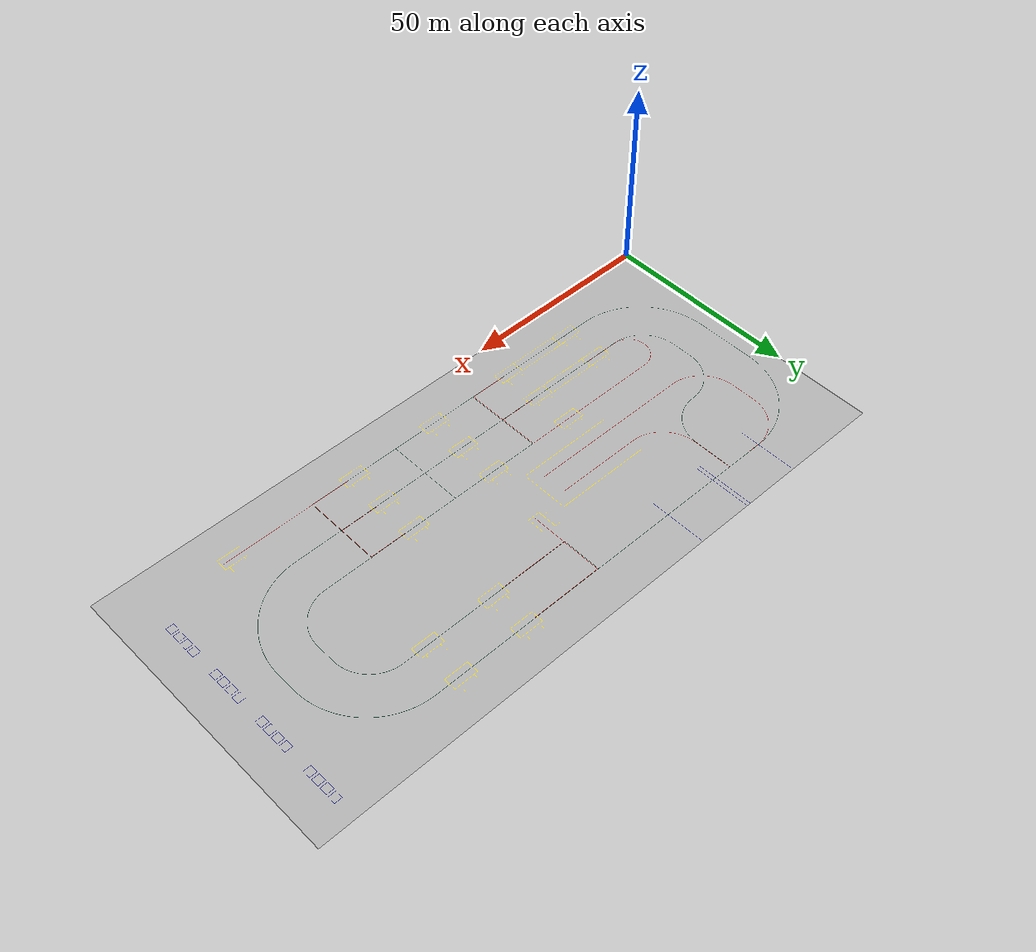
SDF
<sdf version="1.7">
 <world name="factory_ground">
  <gravity>0 0 -9.8</gravity>
  <physics name="default_physics" default="0" type="ode">
   <max_step_size>0.001</max_step_size>
   <real_time_factor>1</real_time_factor>
   <real_time_update_rate>1000</real_time_update_rate>
  </physics>
  <light name="sun" type="directional">
   <pose>0 0 10 0 -0 0</pose>
   <diffuse>0.8 0.8 0.8 1</diffuse>
   <specular>0.2 0.2 0.2 1</specular>
   <attenuation>
    <range>1000</range>
    <constant>0.9</constant>
    <linear>0.01</linear>
    <quadratic>0.001</quadratic>
   </attenuation>
   <direction>-0.5 0.1 -0.9</direction>
   <spot><inner_angle>0</inner_angle><outer_angle>0</outer_angle><falloff>0</falloff></spot>
  </light>
  <magnetic_field>6e-06 2.3e-05 -4.2e-05</magnetic_field>
  <atmosphere type="adiabatic"/>
  <scene><ambient>0.4 0.4 0.4 1</ambient><background>0.7 0.7 0.7 1</background><shadows>1</shadows></scene>
  <spherical_coordinates>
   <surface_model>EARTH_WGS84</surface_model>
   <latitude_deg>0</latitude_deg>
   <longitude_deg>0</longitude_deg>
   <elevation>0</elevation>
   <heading_deg>0</heading_deg>
  </spherical_coordinates>
  <model name="automobile_factory_Ground">
   <static>1</static>
   <pose>0 0 0 0.000523 -8.6e-05 -0</pose>
   <link name="link">
    <inertial>
     <mass>1000</mass>
     <inertia>
      <ixx>1.20008e+06</ixx>
      <ixy>0</ixy>
      <ixz>0</ixz>
      <iyy>8.33342e+06</iyy>
      <iyz>0</iyz>
      <izz>2.03333e+06</izz>
     </inertia>
    </inertial>
    <collision name="collision">
     <pose>80 37.5 0</pose>
     <geometry><plane><normal>0 0 1</normal><size>160 75</size></plane></geometry>
     <surface>
      <friction><ode><mu>100</mu><mu2>50</mu2><fdir1>0 0 0</fdir1><slip1>0</slip1><slip2>0</slip2></ode></friction>
     </surface>
    </collision>
    <visual name="visual">
     <geometry>
      <mesh><uri>model://automobile_factory_Ground/meshes/automobile_factory_Ground.dae</uri></mesh>
     </geometry>
     <meta><layer>1</layer></meta>
    </visual>
   </link>
   <static>1</static>
  </model>
  <model name="marker_1">
   <link name="marker">
    <visual name="visual">
     <geometry><box><size>0.1 0.1 1e-05</size></box></geometry>
     <material>
      <script>
       <uri>model://marker_1/materials/scripts</uri>
       <uri>model://marker_1/materials/textures</uri>
       <name>marker_material1</name>
      </script>
      <ambient>1 1 1 1</ambient>
      <diffuse>1 1 1 1</diffuse>
      <specular>0 0 0 1</specular>
      <emissive>1 1 1 0</emissive>
     </material>
    </visual>
    <collision name="collision"><geometry><box><size>0.1 0.1 1e-05</size></box></geometry></collision>
   </link>
   <link name="marker_pad">
    <pose relative_to="marker">0 0 -1e-05 0 -0 0</pose>
    <visual name="visual">
     <geometry><box><size>0.1 0.1 1e-05</size></box></geometry>
     <material>
      <lighting>1</lighting>
      <script><uri>file://media/materials/scripts/gazebo.material</uri><name>Gazebo/White</name></script>
      <ambient>0.3 0.3 0.3 1</ambient>
      <diffuse>0.7 0.7 0.7 1</diffuse>
      <specular>0.01 0.01 0.01 1</specular>
      <emissive>1 1 1 0</emissive>
     </material>
    </visual>
    <collision name="collision"><geometry><box><size>0.1 0.1 1e-05</size></box></geometry></collision>
   </link>
   <joint name="marker_JOINT_marker_pad" type="revolute">
    <parent>marker</parent>
    <child>marker_pad</child>
    <axis>
     <xyz>0 0 1</xyz>
     <limit><upper>0</upper><lower>0</lower></limit>
     <dynamics><spring_reference>0</spring_reference><spring_stiffness>0</spring_stiffness></dynamics>
    </axis>
   </joint>
   <static>1</static>
   <pose>32 10 0.046333 0 -0 0</pose>
  </model>
  <model name="marker_2">
   <link name="marker">
    <visual name="visual">
     <geometry><box><size>0.1 0.1 1e-05</size></box></geometry>
     <material>
      <script>
       <uri>model://marker_2/materials/scripts</uri>
       <uri>model://marker_2/materials/textures</uri>
       <name>marker_material2</name>
      </script>
      <ambient>1 1 1 1</ambient>
      <diffuse>1 1 1 1</diffuse>
      <specular>0 0 0 1</specular>
      <emissive>1 1 1 0</emissive>
     </material>
    </visual>
    <collision name="collision"><geometry><box><size>0.1 0.1 1e-05</size></box></geometry></collision>
   </link>
   <link name="marker_pad">
    <pose relative_to="marker">0 0 -1e-05 0 -0 0</pose>
    <visual name="visual">
     <geometry><box><size>0.1 0.1 1e-05</size></box></geometry>
     <material>
      <lighting>1</lighting>
      <script><uri>file://media/materials/scripts/gazebo.material</uri><name>Gazebo/White</name></script>
      <ambient>0.3 0.3 0.3 1</ambient>
      <diffuse>0.7 0.7 0.7 1</diffuse>
      <specular>0.01 0.01 0.01 1</specular>
      <emissive>1 1 1 0</emissive>
     </material>
    </visual>
    <collision name="collision"><geometry><box><size>0.1 0.1 1e-05</size></box></geometry></collision>
   </link>
   <joint name="marker_JOINT_marker_pad" type="revolute">
    <parent>marker</parent>
    <child>marker_pad</child>
    <axis>
     <xyz>0 0 1</xyz>
     <limit><upper>0</upper><lower>0</lower></limit>
     <dynamics><spring_reference>0</spring_reference><spring_stiffness>0</spring_stiffness></dynamics>
    </axis>
   </joint>
   <static>1</static>
   <pose>32 20 0.046333 0 -0 0</pose>
  </model>
  <model name="marker_3">
   <link name="marker">
    <visual name="visual">
     <geometry><box><size>0.1 0.1 1e-05</size></box></geometry>
     <material>
      <script>
       <uri>model://marker_3/materials/scripts</uri>
       <uri>model://marker_3/materials/textures</uri>
       <name>marker_material3</name>
      </script>
      <ambient>1 1 1 1</ambient>
      <diffuse>1 1 1 1</diffuse>
      <specular>0 0 0 1</specular>
      <emissive>1 1 1 0</emissive>
     </material>
    </visual>
    <collision name="collision"><geometry><box><size>0.1 0.1 1e-05</size></box></geometry></collision>
   </link>
   <link name="marker_pad">
    <pose relative_to="marker">0 0 -1e-05 0 -0 0</pose>
    <visual name="visual">
     <geometry><box><size>0.1 0.1 1e-05</size></box></geometry>
     <material>
      <lighting>1</lighting>
      <script><uri>file://media/materials/scripts/gazebo.material</uri><name>Gazebo/White</name></script>
      <ambient>0.3 0.3 0.3 1</ambient>
      <diffuse>0.7 0.7 0.7 1</diffuse>
      <specular>0.01 0.01 0.01 1</specular>
      <emissive>1 1 1 0</emissive>
     </material>
    </visual>
    <collision name="collision"><geometry><box><size>0.1 0.1 1e-05</size></box></geometry></collision>
   </link>
   <joint name="marker_JOINT_marker_pad" type="revolute">
    <parent>marker</parent>
    <child>marker_pad</child>
    <axis>
     <xyz>0 0 1</xyz>
     <limit><upper>0</upper><lower>0</lower></limit>
     <dynamics><spring_reference>0</spring_reference><spring_stiffness>0</spring_stiffness></dynamics>
    </axis>
   </joint>
   <static>1</static>
   <pose>50 10 0.046333 0 -0 0</pose>
  </model>
  <model name="marker_4">
   <link name="marker">
    <visual name="visual">
     <geometry><box><size>0.1 0.1 1e-05</size></box></geometry>
     <material>
      <script>
       <uri>model://marker_4/materials/scripts</uri>
       <uri>model://marker_4/materials/textures</uri>
       <name>marker_material4</name>
      </script>
      <ambient>1 1 1 1</ambient>
      <diffuse>1 1 1 1</diffuse>
      <specular>0 0 0 1</specular>
      <emissive>1 1 1 0</emissive>
     </material>
    </visual>
    <collision name="collision"><geometry><box><size>0.1 0.1 1e-05</size></box></geometry></collision>
   </link>
   <link name="marker_pad">
    <pose relative_to="marker">0 0 -1e-05 0 -0 0</pose>
    <visual name="visual">
     <geometry><box><size>0.1 0.1 1e-05</size></box></geometry>
     <material>
      <lighting>1</lighting>
      <script><uri>file://media/materials/scripts/gazebo.material</uri><name>Gazebo/White</name></script>
      <ambient>0.3 0.3 0.3 1</ambient>
      <diffuse>0.7 0.7 0.7 1</diffuse>
      <specular>0.01 0.01 0.01 1</specular>
      <emissive>1 1 1 0</emissive>
     </material>
    </visual>
    <collision name="collision"><geometry><box><size>0.1 0.1 1e-05</size></box></geometry></collision>
   </link>
   <joint name="marker_JOINT_marker_pad" type="revolute">
    <parent>marker</parent>
    <child>marker_pad</child>
    <axis>
     <xyz>0 0 1</xyz>
     <limit><upper>0</upper><lower>0</lower></limit>
     <dynamics><spring_reference>0</spring_reference><spring_stiffness>0</spring_stiffness></dynamics>
    </axis>
   </joint>
   <static>1</static>
   <pose>50 20 0.046333 0 -0 0</pose>
  </model>
  <model name="marker_5">
   <link name="marker">
    <visual name="visual">
     <geometry><box><size>0.1 0.1 1e-05</size></box></geometry>
     <material>
      <script>
       <uri>model://marker_5/materials/scripts</uri>
       <uri>model://marker_5/materials/textures</uri>
       <name>marker_material5</name>
      </script>
      <ambient>1 1 1 1</ambient>
      <diffuse>1 1 1 1</diffuse>
      <specular>0 0 0 1</specular>
      <emissive>1 1 1 0</emissive>
     </material>
    </visual>
    <collision name="collision"><geometry><box><size>0.1 0.1 1e-05</size></box></geometry></collision>
   </link>
   <link name="marker_pad">
    <pose relative_to="marker">0 0 -1e-05 0 -0 0</pose>
    <visual name="visual">
     <geometry><box><size>0.1 0.1 1e-05</size></box></geometry>
     <material>
      <lighting>1</lighting>
      <script><uri>file://media/materials/scripts/gazebo.material</uri><name>Gazebo/White</name></script>
      <ambient>0.3 0.3 0.3 1</ambient>
      <diffuse>0.7 0.7 0.7 1</diffuse>
      <specular>0.01 0.01 0.01 1</specular>
      <emissive>1 1 1 0</emissive>
     </material>
    </visual>
    <collision name="collision"><geometry><box><size>0.1 0.1 1e-05</size></box></geometry></collision>
   </link>
   <joint name="marker_JOINT_marker_pad" type="revolute">
    <parent>marker</parent>
    <child>marker_pad</child>
    <axis>
     <xyz>0 0 1</xyz>
     <limit><upper>0</upper><lower>0</lower></limit>
     <dynamics><spring_reference>0</spring_reference><spring_stiffness>0</spring_stiffness></dynamics>
    </axis>
   </joint>
   <static>1</static>
   <pose>50 30 0.046333 0 -0 0</pose>
  </model>
  <model name="marker_6">
   <link name="marker">
    <visual name="visual">
     <geometry><box><size>0.1 0.1 1e-05</size></box></geometry>
     <material>
      <script>
       <uri>model://marker_6/materials/scripts</uri>
       <uri>model://marker_6/materials/textures</uri>
       <name>marker_material6</name>
      </script>
      <ambient>1 1 1 1</ambient>
      <diffuse>1 1 1 1</diffuse>
      <specular>0 0 0 1</specular>
      <emissive>1 1 1 0</emissive>
     </material>
    </visual>
    <collision name="collision"><geometry><box><size>0.1 0.1 1e-05</size></box></geometry></collision>
   </link>
   <link name="marker_pad">
    <pose relative_to="marker">0 0 -1e-05 0 -0 0</pose>
    <visual name="visual">
     <geometry><box><size>0.1 0.1 1e-05</size></box></geometry>
     <material>
      <lighting>1</lighting>
      <script><uri>file://media/materials/scripts/gazebo.material</uri><name>Gazebo/White</name></script>
      <ambient>0.3 0.3 0.3 1</ambient>
      <diffuse>0.7 0.7 0.7 1</diffuse>
      <specular>0.01 0.01 0.01 1</specular>
      <emissive>1 1 1 0</emissive>
     </material>
    </visual>
    <collision name="collision"><geometry><box><size>0.1 0.1 1e-05</size></box></geometry></collision>
   </link>
   <joint name="marker_JOINT_marker_pad" type="revolute">
    <parent>marker</parent>
    <child>marker_pad</child>
    <axis>
     <xyz>0 0 1</xyz>
     <limit><upper>0</upper><lower>0</lower></limit>
     <dynamics><spring_reference>0</spring_reference><spring_stiffness>0</spring_stiffness></dynamics>
    </axis>
   </joint>
   <static>1</static>
   <pose>62 10 0.046333 0 -0 0</pose>
  </model>
  <model name="marker_7">
   <link name="marker">
    <visual name="visual">
     <geometry><box><size>0.1 0.1 1e-05</size></box></geometry>
     <material>
      <script>
       <uri>model://marker_7/materials/scripts</uri>
       <uri>model://marker_7/materials/textures</uri>
       <name>marker_material7</name>
      </script>
      <ambient>1 1 1 1</ambient>
      <diffuse>1 1 1 1</diffuse>
      <specular>0 0 0 1</specular>
      <emissive>1 1 1 0</emissive>
     </material>
    </visual>
    <collision name="collision"><geometry><box><size>0.1 0.1 1e-05</size></box></geometry></collision>
   </link>
   <link name="marker_pad">
    <pose relative_to="marker">0 0 -1e-05 0 -0 0</pose>
    <visual name="visual">
     <geometry><box><size>0.1 0.1 1e-05</size></box></geometry>
     <material>
      <lighting>1</lighting>
      <script><uri>file://media/materials/scripts/gazebo.material</uri><name>Gazebo/White</name></script>
      <ambient>0.3 0.3 0.3 1</ambient>
      <diffuse>0.7 0.7 0.7 1</diffuse>
      <specular>0.01 0.01 0.01 1</specular>
      <emissive>1 1 1 0</emissive>
     </material>
    </visual>
    <collision name="collision"><geometry><box><size>0.1 0.1 1e-05</size></box></geometry></collision>
   </link>
   <joint name="marker_JOINT_marker_pad" type="revolute">
    <parent>marker</parent>
    <child>marker_pad</child>
    <axis>
     <xyz>0 0 1</xyz>
     <limit><upper>0</upper><lower>0</lower></limit>
     <dynamics><spring_reference>0</spring_reference><spring_stiffness>0</spring_stiffness></dynamics>
    </axis>
   </joint>
   <static>1</static>
   <pose>62 20 0.046333 0 -0 0</pose>
  </model>
  <model name="marker_8">
   <link name="marker">
    <visual name="visual">
     <geometry><box><size>0.1 0.1 1e-05</size></box></geometry>
     <material>
      <script>
       <uri>model://marker_8/materials/scripts</uri>
       <uri>model://marker_8/materials/textures</uri>
       <name>marker_material8</name>
      </script>
      <ambient>1 1 1 1</ambient>
      <diffuse>1 1 1 1</diffuse>
      <specular>0 0 0 1</specular>
      <emissive>1 1 1 0</emissive>
     </material>
    </visual>
    <collision name="collision"><geometry><box><size>0.1 0.1 1e-05</size></box></geometry></collision>
   </link>
   <link name="marker_pad">
    <pose relative_to="marker">0 0 -1e-05 0 -0 0</pose>
    <visual name="visual">
     <geometry><box><size>0.1 0.1 1e-05</size></box></geometry>
     <material>
      <lighting>1</lighting>
      <script><uri>file://media/materials/scripts/gazebo.material</uri><name>Gazebo/White</name></script>
      <ambient>0.3 0.3 0.3 1</ambient>
      <diffuse>0.7 0.7 0.7 1</diffuse>
      <specular>0.01 0.01 0.01 1</specular>
      <emissive>1 1 1 0</emissive>
     </material>
    </visual>
    <collision name="collision"><geometry><box><size>0.1 0.1 1e-05</size></box></geometry></collision>
   </link>
   <joint name="marker_JOINT_marker_pad" type="revolute">
    <parent>marker</parent>
    <child>marker_pad</child>
    <axis>
     <xyz>0 0 1</xyz>
     <limit><upper>0</upper><lower>0</lower></limit>
     <dynamics><spring_reference>0</spring_reference><spring_stiffness>0</spring_stiffness></dynamics>
    </axis>
   </joint>
   <static>1</static>
   <pose>62 30 0.046333 0 -0 0</pose>
  </model>
  <model name="marker_9">
   <link name="marker">
    <visual name="visual">
     <geometry><box><size>0.1 0.1 1e-05</size></box></geometry>
     <material>
      <script>
       <uri>model://marker_9/materials/scripts</uri>
       <uri>model://marker_9/materials/textures</uri>
       <name>marker_material9</name>
      </script>
      <ambient>1 1 1 1</ambient>
      <diffuse>1 1 1 1</diffuse>
      <specular>0 0 0 1</specular>
      <emissive>1 1 1 0</emissive>
     </material>
    </visual>
    <collision name="collision"><geometry><box><size>0.1 0.1 1e-05</size></box></geometry></collision>
   </link>
   <link name="marker_pad">
    <pose relative_to="marker">0 0 -1e-05 0 -0 0</pose>
    <visual name="visual">
     <geometry><box><size>0.1 0.1 1e-05</size></box></geometry>
     <material>
      <lighting>1</lighting>
      <script><uri>file://media/materials/scripts/gazebo.material</uri><name>Gazebo/White</name></script>
      <ambient>0.3 0.3 0.3 1</ambient>
      <diffuse>0.7 0.7 0.7 1</diffuse>
      <specular>0.01 0.01 0.01 1</specular>
      <emissive>1 1 1 0</emissive>
     </material>
    </visual>
    <collision name="collision"><geometry><box><size>0.1 0.1 1e-05</size></box></geometry></collision>
   </link>
   <joint name="marker_JOINT_marker_pad" type="revolute">
    <parent>marker</parent>
    <child>marker_pad</child>
    <axis>
     <xyz>0 0 1</xyz>
     <limit><upper>0</upper><lower>0</lower></limit>
     <dynamics><spring_reference>0</spring_reference><spring_stiffness>0</spring_stiffness></dynamics>
    </axis>
   </joint>
   <static>1</static>
   <pose>74 10 0.046333 0 -0 0</pose>
  </model>
  <model name="marker_10">
   <link name="marker">
    <visual name="visual">
     <geometry><box><size>0.1 0.1 1e-05</size></box></geometry>
     <material>
      <script>
       <uri>model://marker_10/materials/scripts</uri>
       <uri>model://marker_10/materials/textures</uri>
       <name>marker_material10</name>
      </script>
      <ambient>1 1 1 1</ambient>
      <diffuse>1 1 1 1</diffuse>
      <specular>0 0 0 1</specular>
      <emissive>1 1 1 0</emissive>
     </material>
    </visual>
    <collision name="collision"><geometry><box><size>0.1 0.1 1e-05</size></box></geometry></collision>
   </link>
   <link name="marker_pad">
    <pose relative_to="marker">0 0 -1e-05 0 -0 0</pose>
    <visual name="visual">
     <geometry><box><size>0.1 0.1 1e-05</size></box></geometry>
     <material>
      <lighting>1</lighting>
      <script><uri>file://media/materials/scripts/gazebo.material</uri><name>Gazebo/White</name></script>
      <ambient>0.3 0.3 0.3 1</ambient>
      <diffuse>0.7 0.7 0.7 1</diffuse>
      <specular>0.01 0.01 0.01 1</specular>
      <emissive>1 1 1 0</emissive>
     </material>
    </visual>
    <collision name="collision"><geometry><box><size>0.1 0.1 1e-05</size></box></geometry></collision>
   </link>
   <joint name="marker_JOINT_marker_pad" type="revolute">
    <parent>marker</parent>
    <child>marker_pad</child>
    <axis>
     <xyz>0 0 1</xyz>
     <limit><upper>0</upper><lower>0</lower></limit>
     <dynamics><spring_reference>0</spring_reference><spring_stiffness>0</spring_stiffness></dynamics>
    </axis>
   </joint>
   <static>1</static>
   <pose>74 20 0.046333 0 -0 0</pose>
  </model>
  <model name="marker_11">
   <link name="marker">
    <visual name="visual">
     <geometry><box><size>0.1 0.1 1e-05</size></box></geometry>
     <material>
      <script>
       <uri>model://marker_11/materials/scripts</uri>
       <uri>model://marker_11/materials/textures</uri>
       <name>marker_material11</name>
      </script>
      <ambient>1 1 1 1</ambient>
      <diffuse>1 1 1 1</diffuse>
      <specular>0 0 0 1</specular>
      <emissive>1 1 1 0</emissive>
     </material>
    </visual>
    <collision name="collision"><geometry><box><size>0.1 0.1 1e-05</size></box></geometry></collision>
   </link>
   <link name="marker_pad">
    <pose relative_to="marker">0 0 -1e-05 0 -0 0</pose>
    <visual name="visual">
     <geometry><box><size>0.1 0.1 1e-05</size></box></geometry>
     <material>
      <lighting>1</lighting>
      <script><uri>file://media/materials/scripts/gazebo.material</uri><name>Gazebo/White</name></script>
      <ambient>0.3 0.3 0.3 1</ambient>
      <diffuse>0.7 0.7 0.7 1</diffuse>
      <specular>0.01 0.01 0.01 1</specular>
      <emissive>1 1 1 0</emissive>
     </material>
    </visual>
    <collision name="collision"><geometry><box><size>0.1 0.1 1e-05</size></box></geometry></collision>
   </link>
   <joint name="marker_JOINT_marker_pad" type="revolute">
    <parent>marker</parent>
    <child>marker_pad</child>
    <axis>
     <xyz>0 0 1</xyz>
     <limit><upper>0</upper><lower>0</lower></limit>
     <dynamics><spring_reference>0</spring_reference><spring_stiffness>0</spring_stiffness></dynamics>
    </axis>
   </joint>
   <static>1</static>
   <pose>74 30 0.046333 0 -0 0</pose>
  </model>
  <model name="marker_12">
   <link name="marker">
    <visual name="visual">
     <geometry><box><size>0.1 0.1 1e-05</size></box></geometry>
     <material>
      <script>
       <uri>model://marker_12/materials/scripts</uri>
       <uri>model://marker_12/materials/textures</uri>
       <name>marker_material12</name>
      </script>
      <ambient>1 1 1 1</ambient>
      <diffuse>1 1 1 1</diffuse>
      <specular>0 0 0 1</specular>
      <emissive>1 1 1 0</emissive>
     </material>
    </visual>
    <collision name="collision"><geometry><box><size>0.1 0.1 1e-05</size></box></geometry></collision>
   </link>
   <link name="marker_pad">
    <pose relative_to="marker">0 0 -1e-05 0 -0 0</pose>
    <visual name="visual">
     <geometry><box><size>0.1 0.1 1e-05</size></box></geometry>
     <material>
      <lighting>1</lighting>
      <script><uri>file://media/materials/scripts/gazebo.material</uri><name>Gazebo/White</name></script>
      <ambient>0.3 0.3 0.3 1</ambient>
      <diffuse>0.7 0.7 0.7 1</diffuse>
      <specular>0.01 0.01 0.01 1</specular>
      <emissive>1 1 1 0</emissive>
     </material>
    </visual>
    <collision name="collision"><geometry><box><size>0.1 0.1 1e-05</size></box></geometry></collision>
   </link>
   <joint name="marker_JOINT_marker_pad" type="revolute">
    <parent>marker</parent>
    <child>marker_pad</child>
    <axis>
     <xyz>0 0 1</xyz>
     <limit><upper>0</upper><lower>0</lower></limit>
     <dynamics><spring_reference>0</spring_reference><spring_stiffness>0</spring_stiffness></dynamics>
    </axis>
   </joint>
   <static>1</static>
   <pose>85 10 0.046333 0 -0 0</pose>
  </model>
  <model name="marker_13">
   <link name="marker">
    <visual name="visual">
     <geometry><box><size>0.1 0.1 1e-05</size></box></geometry>
     <material>
      <script>
       <uri>model://marker_13/materials/scripts</uri>
       <uri>model://marker_13/materials/textures</uri>
       <name>marker_material13</name>
      </script>
      <ambient>1 1 1 1</ambient>
      <diffuse>1 1 1 1</diffuse>
      <specular>0 0 0 1</specular>
      <emissive>1 1 1 0</emissive>
     </material>
    </visual>
    <collision name="collision"><geometry><box><size>0.1 0.1 1e-05</size></box></geometry></collision>
   </link>
   <link name="marker_pad">
    <pose relative_to="marker">0 0 -1e-05 0 -0 0</pose>
    <visual name="visual">
     <geometry><box><size>0.1 0.1 1e-05</size></box></geometry>
     <material>
      <lighting>1</lighting>
      <script><uri>file://media/materials/scripts/gazebo.material</uri><name>Gazebo/White</name></script>
      <ambient>0.3 0.3 0.3 1</ambient>
      <diffuse>0.7 0.7 0.7 1</diffuse>
      <specular>0.01 0.01 0.01 1</specular>
      <emissive>1 1 1 0</emissive>
     </material>
    </visual>
    <collision name="collision"><geometry><box><size>0.1 0.1 1e-05</size></box></geometry></collision>
   </link>
   <joint name="marker_JOINT_marker_pad" type="revolute">
    <parent>marker</parent>
    <child>marker_pad</child>
    <axis>
     <xyz>0 0 1</xyz>
     <limit><upper>0</upper><lower>0</lower></limit>
     <dynamics><spring_reference>0</spring_reference><spring_stiffness>0</spring_stiffness></dynamics>
    </axis>
   </joint>
   <static>1</static>
   <pose>85 20 0.046333 0 -0 0</pose>
  </model>
  <model name="marker_14">
   <link name="marker">
    <visual name="visual">
     <geometry><box><size>0.1 0.1 1e-05</size></box></geometry>
     <material>
      <script>
       <uri>model://marker_14/materials/scripts</uri>
       <uri>model://marker_14/materials/textures</uri>
       <name>marker_material14</name>
      </script>
      <ambient>1 1 1 1</ambient>
      <diffuse>1 1 1 1</diffuse>
      <specular>0 0 0 1</specular>
      <emissive>1 1 1 0</emissive>
     </material>
    </visual>
    <collision name="collision"><geometry><box><size>0.1 0.1 1e-05</size></box></geometry></collision>
   </link>
   <link name="marker_pad">
    <pose relative_to="marker">0 0 -1e-05 0 -0 0</pose>
    <visual name="visual">
     <geometry><box><size>0.1 0.1 1e-05</size></box></geometry>
     <material>
      <lighting>1</lighting>
      <script><uri>file://media/materials/scripts/gazebo.material</uri><name>Gazebo/White</name></script>
      <ambient>0.3 0.3 0.3 1</ambient>
      <diffuse>0.7 0.7 0.7 1</diffuse>
      <specular>0.01 0.01 0.01 1</specular>
      <emissive>1 1 1 0</emissive>
     </material>
    </visual>
    <collision name="collision"><geometry><box><size>0.1 0.1 1e-05</size></box></geometry></collision>
   </link>
   <joint name="marker_JOINT_marker_pad" type="revolute">
    <parent>marker</parent>
    <child>marker_pad</child>
    <axis>
     <xyz>0 0 1</xyz>
     <limit><upper>0</upper><lower>0</lower></limit>
     <dynamics><spring_reference>0</spring_reference><spring_stiffness>0</spring_stiffness></dynamics>
    </axis>
   </joint>
   <static>1</static>
   <pose>85 30 0.046333 0 -0 0</pose>
  </model>
  <model name="marker_15">
   <link name="marker">
    <visual name="visual">
     <geometry><box><size>0.1 0.1 1e-05</size></box></geometry>
     <material>
      <script>
       <uri>model://marker_15/materials/scripts</uri>
       <uri>model://marker_15/materials/textures</uri>
       <name>marker_material15</name>
      </script>
      <ambient>1 1 1 1</ambient>
      <diffuse>1 1 1 1</diffuse>
      <specular>0 0 0 1</specular>
      <emissive>1 1 1 0</emissive>
     </material>
    </visual>
    <collision name="collision"><geometry><box><size>0.1 0.1 1e-05</size></box></geometry></collision>
   </link>
   <link name="marker_pad">
    <pose relative_to="marker">0 0 -1e-05 0 -0 0</pose>
    <visual name="visual">
     <geometry><box><size>0.1 0.1 1e-05</size></box></geometry>
     <material>
      <lighting>1</lighting>
      <script><uri>file://media/materials/scripts/gazebo.material</uri><name>Gazebo/White</name></script>
      <ambient>0.3 0.3 0.3 1</ambient>
      <diffuse>0.7 0.7 0.7 1</diffuse>
      <specular>0.01 0.01 0.01 1</specular>
      <emissive>1 1 1 0</emissive>
     </material>
    </visual>
    <collision name="collision"><geometry><box><size>0.1 0.1 1e-05</size></box></geometry></collision>
   </link>
   <joint name="marker_JOINT_marker_pad" type="revolute">
    <parent>marker</parent>
    <child>marker_pad</child>
    <axis>
     <xyz>0 0 1</xyz>
     <limit><upper>0</upper><lower>0</lower></limit>
     <dynamics><spring_reference>0</spring_reference><spring_stiffness>0</spring_stiffness></dynamics>
    </axis>
   </joint>
   <static>1</static>
   <pose>97 10 0.046333 0 -0 0</pose>
  </model>
  <model name="marker_16">
   <link name="marker">
    <visual name="visual">
     <geometry><box><size>0.1 0.1 1e-05</size></box></geometry>
     <material>
      <script>
       <uri>model://marker_16/materials/scripts</uri>
       <uri>model://marker_16/materials/textures</uri>
       <name>marker_material16</name>
      </script>
      <ambient>1 1 1 1</ambient>
      <diffuse>1 1 1 1</diffuse>
      <specular>0 0 0 1</specular>
      <emissive>1 1 1 0</emissive>
     </material>
    </visual>
    <collision name="collision"><geometry><box><size>0.1 0.1 1e-05</size></box></geometry></collision>
   </link>
   <link name="marker_pad">
    <pose relative_to="marker">0 0 -1e-05 0 -0 0</pose>
    <visual name="visual">
     <geometry><box><size>0.1 0.1 1e-05</size></box></geometry>
     <material>
      <lighting>1</lighting>
      <script><uri>file://media/materials/scripts/gazebo.material</uri><name>Gazebo/White</name></script>
      <ambient>0.3 0.3 0.3 1</ambient>
      <diffuse>0.7 0.7 0.7 1</diffuse>
      <specular>0.01 0.01 0.01 1</specular>
      <emissive>1 1 1 0</emissive>
     </material>
    </visual>
    <collision name="collision"><geometry><box><size>0.1 0.1 1e-05</size></box></geometry></collision>
   </link>
   <joint name="marker_JOINT_marker_pad" type="revolute">
    <parent>marker</parent>
    <child>marker_pad</child>
    <axis>
     <xyz>0 0 1</xyz>
     <limit><upper>0</upper><lower>0</lower></limit>
     <dynamics><spring_reference>0</spring_reference><spring_stiffness>0</spring_stiffness></dynamics>
    </axis>
   </joint>
   <static>1</static>
   <pose>97 20 0.046333 0 -0 0</pose>
  </model>
  <model name="marker_17">
   <link name="marker">
    <visual name="visual">
     <geometry><box><size>0.1 0.1 1e-05</size></box></geometry>
     <material>
      <script>
       <uri>model://marker_17/materials/scripts</uri>
       <uri>model://marker_17/materials/textures</uri>
       <name>marker_material17</name>
      </script>
      <ambient>1 1 1 1</ambient>
      <diffuse>1 1 1 1</diffuse>
      <specular>0 0 0 1</specular>
      <emissive>1 1 1 0</emissive>
     </material>
    </visual>
    <collision name="collision"><geometry><box><size>0.1 0.1 1e-05</size></box></geometry></collision>
   </link>
   <link name="marker_pad">
    <pose relative_to="marker">0 0 -1e-05 0 -0 0</pose>
    <visual name="visual">
     <geometry><box><size>0.1 0.1 1e-05</size></box></geometry>
     <material>
      <lighting>1</lighting>
      <script><uri>file://media/materials/scripts/gazebo.material</uri><name>Gazebo/White</name></script>
      <ambient>0.3 0.3 0.3 1</ambient>
      <diffuse>0.7 0.7 0.7 1</diffuse>
      <specular>0.01 0.01 0.01 1</specular>
      <emissive>1 1 1 0</emissive>
     </material>
    </visual>
    <collision name="collision"><geometry><box><size>0.1 0.1 1e-05</size></box></geometry></collision>
   </link>
   <joint name="marker_JOINT_marker_pad" type="revolute">
    <parent>marker</parent>
    <child>marker_pad</child>
    <axis>
     <xyz>0 0 1</xyz>
     <limit><upper>0</upper><lower>0</lower></limit>
     <dynamics><spring_reference>0</spring_reference><spring_stiffness>0</spring_stiffness></dynamics>
    </axis>
   </joint>
   <static>1</static>
   <pose>97 30 0.046333 0 -0 0</pose>
  </model>
  <model name="marker_18">
   <link name="marker">
    <visual name="visual">
     <geometry><box><size>0.1 0.1 1e-05</size></box></geometry>
     <material>
      <script>
       <uri>model://marker_18/materials/scripts</uri>
       <uri>model://marker_18/materials/textures</uri>
       <name>marker_material18</name>
      </script>
      <ambient>1 1 1 1</ambient>
      <diffuse>1 1 1 1</diffuse>
      <specular>0 0 0 1</specular>
      <emissive>1 1 1 0</emissive>
     </material>
    </visual>
    <collision name="collision"><geometry><box><size>0.1 0.1 1e-05</size></box></geometry></collision>
   </link>
   <link name="marker_pad">
    <pose relative_to="marker">0 0 -1e-05 0 -0 0</pose>
    <visual name="visual">
     <geometry><box><size>0.1 0.1 1e-05</size></box></geometry>
     <material>
      <lighting>1</lighting>
      <script><uri>file://media/materials/scripts/gazebo.material</uri><name>Gazebo/White</name></script>
      <ambient>0.3 0.3 0.3 1</ambient>
      <diffuse>0.7 0.7 0.7 1</diffuse>
      <specular>0.01 0.01 0.01 1</specular>
      <emissive>1 1 1 0</emissive>
     </material>
    </visual>
    <collision name="collision"><geometry><box><size>0.1 0.1 1e-05</size></box></geometry></collision>
   </link>
   <joint name="marker_JOINT_marker_pad" type="revolute">
    <parent>marker</parent>
    <child>marker_pad</child>
    <axis>
     <xyz>0 0 1</xyz>
     <limit><upper>0</upper><lower>0</lower></limit>
     <dynamics><spring_reference>0</spring_reference><spring_stiffness>0</spring_stiffness></dynamics>
    </axis>
   </joint>
   <static>1</static>
   <pose>109.5 10 0.046333 0 -0 0</pose>
  </model>
  <model name="marker_19">
   <link name="marker">
    <visual name="visual">
     <geometry><box><size>0.1 0.1 1e-05</size></box></geometry>
     <material>
      <script>
       <uri>model://marker_19/materials/scripts</uri>
       <uri>model://marker_19/materials/textures</uri>
       <name>marker_material19</name>
      </script>
      <ambient>1 1 1 1</ambient>
      <diffuse>1 1 1 1</diffuse>
      <specular>0 0 0 1</specular>
      <emissive>1 1 1 0</emissive>
     </material>
    </visual>
    <collision name="collision"><geometry><box><size>0.1 0.1 1e-05</size></box></geometry></collision>
   </link>
   <link name="marker_pad">
    <pose relative_to="marker">0 0 -1e-05 0 -0 0</pose>
    <visual name="visual">
     <geometry><box><size>0.1 0.1 1e-05</size></box></geometry>
     <material>
      <lighting>1</lighting>
      <script><uri>file://media/materials/scripts/gazebo.material</uri><name>Gazebo/White</name></script>
      <ambient>0.3 0.3 0.3 1</ambient>
      <diffuse>0.7 0.7 0.7 1</diffuse>
      <specular>0.01 0.01 0.01 1</specular>
      <emissive>1 1 1 0</emissive>
     </material>
    </visual>
    <collision name="collision"><geometry><box><size>0.1 0.1 1e-05</size></box></geometry></collision>
   </link>
   <joint name="marker_JOINT_marker_pad" type="revolute">
    <parent>marker</parent>
    <child>marker_pad</child>
    <axis>
     <xyz>0 0 1</xyz>
     <limit><upper>0</upper><lower>0</lower></limit>
     <dynamics><spring_reference>0</spring_reference><spring_stiffness>0</spring_stiffness></dynamics>
    </axis>
   </joint>
   <static>1</static>
   <pose>109.5 20 0.046333 0 -0 0</pose>
  </model>
  <model name="marker_20">
   <link name="marker">
    <visual name="visual">
     <geometry><box><size>0.1 0.1 1e-05</size></box></geometry>
     <material>
      <script>
       <uri>model://marker_20/materials/scripts</uri>
       <uri>model://marker_20/materials/textures</uri>
       <name>marker_material20</name>
      </script>
      <ambient>1 1 1 1</ambient>
      <diffuse>1 1 1 1</diffuse>
      <specular>0 0 0 1</specular>
      <emissive>1 1 1 0</emissive>
     </material>
    </visual>
    <collision name="collision"><geometry><box><size>0.1 0.1 1e-05</size></box></geometry></collision>
   </link>
   <link name="marker_pad">
    <pose relative_to="marker">0 0 -1e-05 0 -0 0</pose>
    <visual name="visual">
     <geometry><box><size>0.1 0.1 1e-05</size></box></geometry>
     <material>
      <lighting>1</lighting>
      <script><uri>file://media/materials/scripts/gazebo.material</uri><name>Gazebo/White</name></script>
      <ambient>0.3 0.3 0.3 1</ambient>
      <diffuse>0.7 0.7 0.7 1</diffuse>
      <specular>0.01 0.01 0.01 1</specular>
      <emissive>1 1 1 0</emissive>
     </material>
    </visual>
    <collision name="collision"><geometry><box><size>0.1 0.1 1e-05</size></box></geometry></collision>
   </link>
   <joint name="marker_JOINT_marker_pad" type="revolute">
    <parent>marker</parent>
    <child>marker_pad</child>
    <axis>
     <xyz>0 0 1</xyz>
     <limit><upper>0</upper><lower>0</lower></limit>
     <dynamics><spring_reference>0</spring_reference><spring_stiffness>0</spring_stiffness></dynamics>
    </axis>
   </joint>
   <static>1</static>
   <pose>109.5 30 0.046333 0 -0 0</pose>
  </model>
  <model name="marker_21">
   <link name="marker">
    <visual name="visual">
     <geometry><box><size>0.1 0.1 1e-05</size></box></geometry>
     <material>
      <script>
       <uri>model://marker_21/materials/scripts</uri>
       <uri>model://marker_21/materials/textures</uri>
       <name>marker_material21</name>
      </script>
      <ambient>1 1 1 1</ambient>
      <diffuse>1 1 1 1</diffuse>
      <specular>0 0 0 1</specular>
      <emissive>1 1 1 0</emissive>
     </material>
    </visual>
    <collision name="collision"><geometry><box><size>0.1 0.1 1e-05</size></box></geometry></collision>
   </link>
   <link name="marker_pad">
    <pose relative_to="marker">0 0 -1e-05 0 -0 0</pose>
    <visual name="visual">
     <geometry><box><size>0.1 0.1 1e-05</size></box></geometry>
     <material>
      <lighting>1</lighting>
      <script><uri>file://media/materials/scripts/gazebo.material</uri><name>Gazebo/White</name></script>
      <ambient>0.3 0.3 0.3 1</ambient>
      <diffuse>0.7 0.7 0.7 1</diffuse>
      <specular>0.01 0.01 0.01 1</specular>
      <emissive>1 1 1 0</emissive>
     </material>
    </visual>
    <collision name="collision"><geometry><box><size>0.1 0.1 1e-05</size></box></geometry></collision>
   </link>
   <joint name="marker_JOINT_marker_pad" type="revolute">
    <parent>marker</parent>
    <child>marker_pad</child>
    <axis>
     <xyz>0 0 1</xyz>
     <limit><upper>0</upper><lower>0</lower></limit>
     <dynamics><spring_reference>0</spring_reference><spring_stiffness>0</spring_stiffness></dynamics>
    </axis>
   </joint>
   <static>1</static>
   <pose>131.233 10 0.046333 0 -0 0</pose>
  </model>
  <model name="marker_22">
   <link name="marker">
    <visual name="visual">
     <geometry><box><size>0.1 0.1 1e-05</size></box></geometry>
     <material>
      <script>
       <uri>model://marker_22/materials/scripts</uri>
       <uri>model://marker_22/materials/textures</uri>
       <name>marker_material22</name>
      </script>
      <ambient>1 1 1 1</ambient>
      <diffuse>1 1 1 1</diffuse>
      <specular>0 0 0 1</specular>
      <emissive>1 1 1 0</emissive>
     </material>
    </visual>
    <collision name="collision"><geometry><box><size>0.1 0.1 1e-05</size></box></geometry></collision>
   </link>
   <link name="marker_pad">
    <pose relative_to="marker">0 0 -1e-05 0 -0 0</pose>
    <visual name="visual">
     <geometry><box><size>0.1 0.1 1e-05</size></box></geometry>
     <material>
      <lighting>1</lighting>
      <script><uri>file://media/materials/scripts/gazebo.material</uri><name>Gazebo/White</name></script>
      <ambient>0.3 0.3 0.3 1</ambient>
      <diffuse>0.7 0.7 0.7 1</diffuse>
      <specular>0.01 0.01 0.01 1</specular>
      <emissive>1 1 1 0</emissive>
     </material>
    </visual>
    <collision name="collision"><geometry><box><size>0.1 0.1 1e-05</size></box></geometry></collision>
   </link>
   <joint name="marker_JOINT_marker_pad" type="revolute">
    <parent>marker</parent>
    <child>marker_pad</child>
    <axis>
     <xyz>0 0 1</xyz>
     <limit><upper>0</upper><lower>0</lower></limit>
     <dynamics><spring_reference>0</spring_reference><spring_stiffness>0</spring_stiffness></dynamics>
    </axis>
   </joint>
   <static>1</static>
   <pose>115.5 55 0.046333 0 -0 0</pose>
  </model>
  <model name="marker_23">
   <link name="marker">
    <visual name="visual">
     <geometry><box><size>0.1 0.1 1e-05</size></box></geometry>
     <material>
      <script>
       <uri>model://marker_23/materials/scripts</uri>
       <uri>model://marker_23/materials/textures</uri>
       <name>marker_material23</name>
      </script>
      <ambient>1 1 1 1</ambient>
      <diffuse>1 1 1 1</diffuse>
      <specular>0 0 0 1</specular>
      <emissive>1 1 1 0</emissive>
     </material>
    </visual>
    <collision name="collision"><geometry><box><size>0.1 0.1 1e-05</size></box></geometry></collision>
   </link>
   <link name="marker_pad">
    <pose relative_to="marker">0 0 -1e-05 0 -0 0</pose>
    <visual name="visual">
     <geometry><box><size>0.1 0.1 1e-05</size></box></geometry>
     <material>
      <lighting>1</lighting>
      <script><uri>file://media/materials/scripts/gazebo.material</uri><name>Gazebo/White</name></script>
      <ambient>0.3 0.3 0.3 1</ambient>
      <diffuse>0.7 0.7 0.7 1</diffuse>
      <specular>0.01 0.01 0.01 1</specular>
      <emissive>1 1 1 0</emissive>
     </material>
    </visual>
    <collision name="collision"><geometry><box><size>0.1 0.1 1e-05</size></box></geometry></collision>
   </link>
   <joint name="marker_JOINT_marker_pad" type="revolute">
    <parent>marker</parent>
    <child>marker_pad</child>
    <axis>
     <xyz>0 0 1</xyz>
     <limit><upper>0</upper><lower>0</lower></limit>
     <dynamics><spring_reference>0</spring_reference><spring_stiffness>0</spring_stiffness></dynamics>
    </axis>
   </joint>
   <static>1</static>
   <pose>115.5 65 0.046333 0 -0 0</pose>
  </model>
  <model name="marker_24">
   <link name="marker">
    <visual name="visual">
     <geometry><box><size>0.1 0.1 1e-05</size></box></geometry>
     <material>
      <script>
       <uri>model://marker_24/materials/scripts</uri>
       <uri>model://marker_24/materials/textures</uri>
       <name>marker_material24</name>
      </script>
      <ambient>1 1 1 1</ambient>
      <diffuse>1 1 1 1</diffuse>
      <specular>0 0 0 1</specular>
      <emissive>1 1 1 0</emissive>
     </material>
    </visual>
    <collision name="collision"><geometry><box><size>0.1 0.1 1e-05</size></box></geometry></collision>
   </link>
   <link name="marker_pad">
    <pose relative_to="marker">0 0 -1e-05 0 -0 0</pose>
    <visual name="visual">
     <geometry><box><size>0.1 0.1 1e-05</size></box></geometry>
     <material>
      <lighting>1</lighting>
      <script><uri>file://media/materials/scripts/gazebo.material</uri><name>Gazebo/White</name></script>
      <ambient>0.3 0.3 0.3 1</ambient>
      <diffuse>0.7 0.7 0.7 1</diffuse>
      <specular>0.01 0.01 0.01 1</specular>
      <emissive>1 1 1 0</emissive>
     </material>
    </visual>
    <collision name="collision"><geometry><box><size>0.1 0.1 1e-05</size></box></geometry></collision>
   </link>
   <joint name="marker_JOINT_marker_pad" type="revolute">
    <parent>marker</parent>
    <child>marker_pad</child>
    <axis>
     <xyz>0 0 1</xyz>
     <limit><upper>0</upper><lower>0</lower></limit>
     <dynamics><spring_reference>0</spring_reference><spring_stiffness>0</spring_stiffness></dynamics>
    </axis>
   </joint>
   <static>1</static>
   <pose>97 55 0.046333 0 -0 0</pose>
  </model>
  <model name="marker_25">
   <link name="marker">
    <visual name="visual">
     <geometry><box><size>0.1 0.1 1e-05</size></box></geometry>
     <material>
      <script>
       <uri>model://marker_25/materials/scripts</uri>
       <uri>model://marker_25/materials/textures</uri>
       <name>marker_material25</name>
      </script>
      <ambient>1 1 1 1</ambient>
      <diffuse>1 1 1 1</diffuse>
      <specular>0 0 0 1</specular>
      <emissive>1 1 1 0</emissive>
     </material>
    </visual>
    <collision name="collision"><geometry><box><size>0.1 0.1 1e-05</size></box></geometry></collision>
   </link>
   <link name="marker_pad">
    <pose relative_to="marker">0 0 -1e-05 0 -0 0</pose>
    <visual name="visual">
     <geometry><box><size>0.1 0.1 1e-05</size></box></geometry>
     <material>
      <lighting>1</lighting>
      <script><uri>file://media/materials/scripts/gazebo.material</uri><name>Gazebo/White</name></script>
      <ambient>0.3 0.3 0.3 1</ambient>
      <diffuse>0.7 0.7 0.7 1</diffuse>
      <specular>0.01 0.01 0.01 1</specular>
      <emissive>1 1 1 0</emissive>
     </material>
    </visual>
    <collision name="collision"><geometry><box><size>0.1 0.1 1e-05</size></box></geometry></collision>
   </link>
   <joint name="marker_JOINT_marker_pad" type="revolute">
    <parent>marker</parent>
    <child>marker_pad</child>
    <axis>
     <xyz>0 0 1</xyz>
     <limit><upper>0</upper><lower>0</lower></limit>
     <dynamics><spring_reference>0</spring_reference><spring_stiffness>0</spring_stiffness></dynamics>
    </axis>
   </joint>
   <static>1</static>
   <pose>97 65 0.046333 0 -0 0</pose>
  </model>
  <model name="marker_26">
   <link name="marker">
    <visual name="visual">
     <geometry><box><size>0.1 0.1 1e-05</size></box></geometry>
     <material>
      <script>
       <uri>model://marker_26/materials/scripts</uri>
       <uri>model://marker_26/materials/textures</uri>
       <name>marker_material26</name>
      </script>
      <ambient>1 1 1 1</ambient>
      <diffuse>1 1 1 1</diffuse>
      <specular>0 0 0 1</specular>
      <emissive>1 1 1 0</emissive>
     </material>
    </visual>
    <collision name="collision"><geometry><box><size>0.1 0.1 1e-05</size></box></geometry></collision>
   </link>
   <link name="marker_pad">
    <pose relative_to="marker">0 0 -1e-05 0 -0 0</pose>
    <visual name="visual">
     <geometry><box><size>0.1 0.1 1e-05</size></box></geometry>
     <material>
      <lighting>1</lighting>
      <script><uri>file://media/materials/scripts/gazebo.material</uri><name>Gazebo/White</name></script>
      <ambient>0.3 0.3 0.3 1</ambient>
      <diffuse>0.7 0.7 0.7 1</diffuse>
      <specular>0.01 0.01 0.01 1</specular>
      <emissive>1 1 1 0</emissive>
     </material>
    </visual>
    <collision name="collision"><geometry><box><size>0.1 0.1 1e-05</size></box></geometry></collision>
   </link>
   <joint name="marker_JOINT_marker_pad" type="revolute">
    <parent>marker</parent>
    <child>marker_pad</child>
    <axis>
     <xyz>0 0 1</xyz>
     <limit><upper>0</upper><lower>0</lower></limit>
     <dynamics><spring_reference>0</spring_reference><spring_stiffness>0</spring_stiffness></dynamics>
    </axis>
   </joint>
   <static>1</static>
   <pose>76.5 55 0.046333 0 -0 0</pose>
  </model>
  <model name="marker_27">
   <link name="marker">
    <visual name="visual">
     <geometry><box><size>0.1 0.1 1e-05</size></box></geometry>
     <material>
      <script>
       <uri>model://marker_27/materials/scripts</uri>
       <uri>model://marker_27/materials/textures</uri>
       <name>marker_material27</name>
      </script>
      <ambient>1 1 1 1</ambient>
      <diffuse>1 1 1 1</diffuse>
      <specular>0 0 0 1</specular>
      <emissive>1 1 1 0</emissive>
     </material>
    </visual>
    <collision name="collision"><geometry><box><size>0.1 0.1 1e-05</size></box></geometry></collision>
   </link>
   <link name="marker_pad">
    <pose relative_to="marker">0 0 -1e-05 0 -0 0</pose>
    <visual name="visual">
     <geometry><box><size>0.1 0.1 1e-05</size></box></geometry>
     <material>
      <lighting>1</lighting>
      <script><uri>file://media/materials/scripts/gazebo.material</uri><name>Gazebo/White</name></script>
      <ambient>0.3 0.3 0.3 1</ambient>
      <diffuse>0.7 0.7 0.7 1</diffuse>
      <specular>0.01 0.01 0.01 1</specular>
      <emissive>1 1 1 0</emissive>
     </material>
    </visual>
    <collision name="collision"><geometry><box><size>0.1 0.1 1e-05</size></box></geometry></collision>
   </link>
   <joint name="marker_JOINT_marker_pad" type="revolute">
    <parent>marker</parent>
    <child>marker_pad</child>
    <axis>
     <xyz>0 0 1</xyz>
     <limit><upper>0</upper><lower>0</lower></limit>
     <dynamics><spring_reference>0</spring_reference><spring_stiffness>0</spring_stiffness></dynamics>
    </axis>
   </joint>
   <static>1</static>
   <pose>76.5 65 0.046333 0 -0 0</pose>
  </model>
  <model name="marker_28">
   <link name="marker">
    <visual name="visual">
     <geometry><box><size>0.1 0.1 1e-05</size></box></geometry>
     <material>
      <script>
       <uri>model://marker_28/materials/scripts</uri>
       <uri>model://marker_28/materials/textures</uri>
       <name>marker_material28</name>
      </script>
      <ambient>1 1 1 1</ambient>
      <diffuse>1 1 1 1</diffuse>
      <specular>0 0 0 1</specular>
      <emissive>1 1 1 0</emissive>
     </material>
    </visual>
    <collision name="collision"><geometry><box><size>0.1 0.1 1e-05</size></box></geometry></collision>
   </link>
   <link name="marker_pad">
    <pose relative_to="marker">0 0 -1e-05 0 -0 0</pose>
    <visual name="visual">
     <geometry><box><size>0.1 0.1 1e-05</size></box></geometry>
     <material>
      <lighting>1</lighting>
      <script><uri>file://media/materials/scripts/gazebo.material</uri><name>Gazebo/White</name></script>
      <ambient>0.3 0.3 0.3 1</ambient>
      <diffuse>0.7 0.7 0.7 1</diffuse>
      <specular>0.01 0.01 0.01 1</specular>
      <emissive>1 1 1 0</emissive>
     </material>
    </visual>
    <collision name="collision"><geometry><box><size>0.1 0.1 1e-05</size></box></geometry></collision>
   </link>
   <joint name="marker_JOINT_marker_pad" type="revolute">
    <parent>marker</parent>
    <child>marker_pad</child>
    <axis>
     <xyz>0 0 1</xyz>
     <limit><upper>0</upper><lower>0</lower></limit>
     <dynamics><spring_reference>0</spring_reference><spring_stiffness>0</spring_stiffness></dynamics>
    </axis>
   </joint>
   <static>1</static>
   <pose>76.5 48 0.046333 0 -0 0</pose>
  </model>
  <model name="marker_29">
   <link name="marker">
    <visual name="visual">
     <geometry><box><size>0.1 0.1 1e-05</size></box></geometry>
     <material>
      <script>
       <uri>model://marker_29/materials/scripts</uri>
       <uri>model://marker_29/materials/textures</uri>
       <name>marker_material29</name>
      </script>
      <ambient>1 1 1 1</ambient>
      <diffuse>1 1 1 1</diffuse>
      <specular>0 0 0 1</specular>
      <emissive>1 1 1 0</emissive>
     </material>
    </visual>
    <collision name="collision"><geometry><box><size>0.1 0.1 1e-05</size></box></geometry></collision>
   </link>
   <link name="marker_pad">
    <pose relative_to="marker">0 0 -1e-05 0 -0 0</pose>
    <visual name="visual">
     <geometry><box><size>0.1 0.1 1e-05</size></box></geometry>
     <material>
      <lighting>1</lighting>
      <script><uri>file://media/materials/scripts/gazebo.material</uri><name>Gazebo/White</name></script>
      <ambient>0.3 0.3 0.3 1</ambient>
      <diffuse>0.7 0.7 0.7 1</diffuse>
      <specular>0.01 0.01 0.01 1</specular>
      <emissive>1 1 1 0</emissive>
     </material>
    </visual>
    <collision name="collision"><geometry><box><size>0.1 0.1 1e-05</size></box></geometry></collision>
   </link>
   <joint name="marker_JOINT_marker_pad" type="revolute">
    <parent>marker</parent>
    <child>marker_pad</child>
    <axis>
     <xyz>0 0 1</xyz>
     <limit><upper>0</upper><lower>0</lower></limit>
     <dynamics><spring_reference>0</spring_reference><spring_stiffness>0</spring_stiffness></dynamics>
    </axis>
   </joint>
   <static>1</static>
   <pose>51 65 0.046333 0 -0 0</pose>
  </model>
  <model name="marker_30">
   <link name="marker">
    <visual name="visual">
     <geometry><box><size>0.1 0.1 1e-05</size></box></geometry>
     <material>
      <script>
       <uri>model://marker_30/materials/scripts</uri>
       <uri>model://marker_30/materials/textures</uri>
       <name>marker_material30</name>
      </script>
      <ambient>1 1 1 1</ambient>
      <diffuse>1 1 1 1</diffuse>
      <specular>0 0 0 1</specular>
      <emissive>1 1 1 0</emissive>
     </material>
    </visual>
    <collision name="collision"><geometry><box><size>0.1 0.1 1e-05</size></box></geometry></collision>
   </link>
   <link name="marker_pad">
    <pose relative_to="marker">0 0 -1e-05 0 -0 0</pose>
    <visual name="visual">
     <geometry><box><size>0.1 0.1 1e-05</size></box></geometry>
     <material>
      <lighting>1</lighting>
      <script><uri>file://media/materials/scripts/gazebo.material</uri><name>Gazebo/White</name></script>
      <ambient>0.3 0.3 0.3 1</ambient>
      <diffuse>0.7 0.7 0.7 1</diffuse>
      <specular>0.01 0.01 0.01 1</specular>
      <emissive>1 1 1 0</emissive>
     </material>
    </visual>
    <collision name="collision"><geometry><box><size>0.1 0.1 1e-05</size></box></geometry></collision>
   </link>
   <joint name="marker_JOINT_marker_pad" type="revolute">
    <parent>marker</parent>
    <child>marker_pad</child>
    <axis>
     <xyz>0 0 1</xyz>
     <limit><upper>0</upper><lower>0</lower></limit>
     <dynamics><spring_reference>0</spring_reference><spring_stiffness>0</spring_stiffness></dynamics>
    </axis>
   </joint>
   <static>1</static>
   <pose>44 65 0.046333 0 -0 0</pose>
  </model>
  <model name="marker_31">
   <link name="marker">
    <visual name="visual">
     <geometry><box><size>0.1 0.1 1e-05</size></box></geometry>
     <material>
      <script>
       <uri>model://marker_31/materials/scripts</uri>
       <uri>model://marker_31/materials/textures</uri>
       <name>marker_material31</name>
      </script>
      <ambient>1 1 1 1</ambient>
      <diffuse>1 1 1 1</diffuse>
      <specular>0 0 0 1</specular>
      <emissive>1 1 1 0</emissive>
     </material>
    </visual>
    <collision name="collision"><geometry><box><size>0.1 0.1 1e-05</size></box></geometry></collision>
   </link>
   <link name="marker_pad">
    <pose relative_to="marker">0 0 -1e-05 0 -0 0</pose>
    <visual name="visual">
     <geometry><box><size>0.1 0.1 1e-05</size></box></geometry>
     <material>
      <lighting>1</lighting>
      <script><uri>file://media/materials/scripts/gazebo.material</uri><name>Gazebo/White</name></script>
      <ambient>0.3 0.3 0.3 1</ambient>
      <diffuse>0.7 0.7 0.7 1</diffuse>
      <specular>0.01 0.01 0.01 1</specular>
      <emissive>1 1 1 0</emissive>
     </material>
    </visual>
    <collision name="collision"><geometry><box><size>0.1 0.1 1e-05</size></box></geometry></collision>
   </link>
   <joint name="marker_JOINT_marker_pad" type="revolute">
    <parent>marker</parent>
    <child>marker_pad</child>
    <axis>
     <xyz>0 0 1</xyz>
     <limit><upper>0</upper><lower>0</lower></limit>
     <dynamics><spring_reference>0</spring_reference><spring_stiffness>0</spring_stiffness></dynamics>
    </axis>
   </joint>
   <static>1</static>
   <pose>35 65 0.046333 0 -0 0</pose>
  </model>
  <model name="marker_32">
   <link name="marker">
    <visual name="visual">
     <geometry><box><size>0.1 0.1 1e-05</size></box></geometry>
     <material>
      <script>
       <uri>model://marker_32/materials/scripts</uri>
       <uri>model://marker_32/materials/textures</uri>
       <name>marker_material32</name>
      </script>
      <ambient>1 1 1 1</ambient>
      <diffuse>1 1 1 1</diffuse>
      <specular>0 0 0 1</specular>
      <emissive>1 1 1 0</emissive>
     </material>
    </visual>
    <collision name="collision"><geometry><box><size>0.1 0.1 1e-05</size></box></geometry></collision>
   </link>
   <link name="marker_pad">
    <pose relative_to="marker">0 0 -1e-05 0 -0 0</pose>
    <visual name="visual">
     <geometry><box><size>0.1 0.1 1e-05</size></box></geometry>
     <material>
      <lighting>1</lighting>
      <script><uri>file://media/materials/scripts/gazebo.material</uri><name>Gazebo/White</name></script>
      <ambient>0.3 0.3 0.3 1</ambient>
      <diffuse>0.7 0.7 0.7 1</diffuse>
      <specular>0.01 0.01 0.01 1</specular>
      <emissive>1 1 1 0</emissive>
     </material>
    </visual>
    <collision name="collision"><geometry><box><size>0.1 0.1 1e-05</size></box></geometry></collision>
   </link>
   <joint name="marker_JOINT_marker_pad" type="revolute">
    <parent>marker</parent>
    <child>marker_pad</child>
    <axis>
     <xyz>0 0 1</xyz>
     <limit><upper>0</upper><lower>0</lower></limit>
     <dynamics><spring_reference>0</spring_reference><spring_stiffness>0</spring_stiffness></dynamics>
    </axis>
   </joint>
   <static>1</static>
   <pose>28 65 0.046333 0 -0 0</pose>
  </model>
  <model name="marker_33">
   <link name="marker">
    <visual name="visual">
     <geometry><box><size>0.1 0.1 1e-05</size></box></geometry>
     <material>
      <script>
       <uri>model://marker_33/materials/scripts</uri>
       <uri>model://marker_33/materials/textures</uri>
       <name>marker_material33</name>
      </script>
      <ambient>1 1 1 1</ambient>
      <diffuse>1 1 1 1</diffuse>
      <specular>0 0 0 1</specular>
      <emissive>1 1 1 0</emissive>
      <shader type="vertex"><normal_map>__default__</normal_map></shader>
     </material>
    </visual>
    <collision name="collision"><geometry><box><size>0.1 0.1 1e-05</size></box></geometry></collision>
   </link>
   <link name="marker_pad">
    <pose relative_to="marker">0 0 -1e-05 0 -0 0</pose>
    <visual name="visual">
     <geometry><box><size>0.1 0.1 1e-05</size></box></geometry>
     <material>
      <lighting>1</lighting>
      <script><uri>file://media/materials/scripts/gazebo.material</uri><name>Gazebo/White</name></script>
      <ambient>0.3 0.3 0.3 1</ambient>
      <diffuse>0.7 0.7 0.7 1</diffuse>
      <specular>0.01 0.01 0.01 1</specular>
      <emissive>1 1 1 0</emissive>
      <shader type="vertex"><normal_map>__default__</normal_map></shader>
     </material>
    </visual>
    <collision name="collision"><geometry><box><size>0.1 0.1 1e-05</size></box></geometry></collision>
   </link>
   <joint name="marker_JOINT_marker_pad" type="revolute">
    <parent>marker</parent>
    <child>marker_pad</child>
    <axis>
     <xyz>0 0 1</xyz>
     <limit><upper>0</upper><lower>0</lower></limit>
     <dynamics><spring_reference>0</spring_reference><spring_stiffness>0</spring_stiffness></dynamics>
    </axis>
   </joint>
   <static>1</static>
   <pose>66 44.8 0.046333 0 -0 0</pose>
  </model>
  <model name="marker_34">
   <link name="marker">
    <visual name="visual">
     <geometry><box><size>0.1 0.1 1e-05</size></box></geometry>
     <material>
      <script>
       <uri>model://marker_34/materials/scripts</uri>
       <uri>model://marker_34/materials/textures</uri>
       <name>marker_material34</name>
      </script>
      <ambient>1 1 1 1</ambient>
      <diffuse>1 1 1 1</diffuse>
      <specular>0 0 0 1</specular>
      <emissive>1 1 1 0</emissive>
      <shader type="vertex"><normal_map>__default__</normal_map></shader>
     </material>
    </visual>
    <collision name="collision"><geometry><box><size>0.1 0.1 1e-05</size></box></geometry></collision>
   </link>
   <link name="marker_pad">
    <pose relative_to="marker">0 0 -1e-05 0 -0 0</pose>
    <visual name="visual">
     <geometry><box><size>0.1 0.1 1e-05</size></box></geometry>
     <material>
      <lighting>1</lighting>
      <script><uri>file://media/materials/scripts/gazebo.material</uri><name>Gazebo/White</name></script>
      <ambient>0.3 0.3 0.3 1</ambient>
      <diffuse>0.7 0.7 0.7 1</diffuse>
      <specular>0.01 0.01 0.01 1</specular>
      <emissive>1 1 1 0</emissive>
      <shader type="vertex"><normal_map>__default__</normal_map></shader>
     </material>
    </visual>
    <collision name="collision"><geometry><box><size>0.1 0.1 1e-05</size></box></geometry></collision>
   </link>
   <joint name="marker_JOINT_marker_pad" type="revolute">
    <parent>marker</parent>
    <child>marker_pad</child>
    <axis>
     <xyz>0 0 1</xyz>
     <limit><upper>0</upper><lower>0</lower></limit>
     <dynamics><spring_reference>0</spring_reference><spring_stiffness>0</spring_stiffness></dynamics>
    </axis>
   </joint>
   <static>1</static>
   <pose>66 38.8 0.046333 0 -0 0</pose>
  </model>
 </world>
</sdf>
